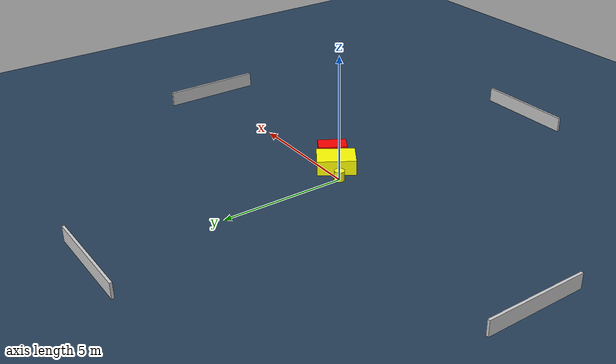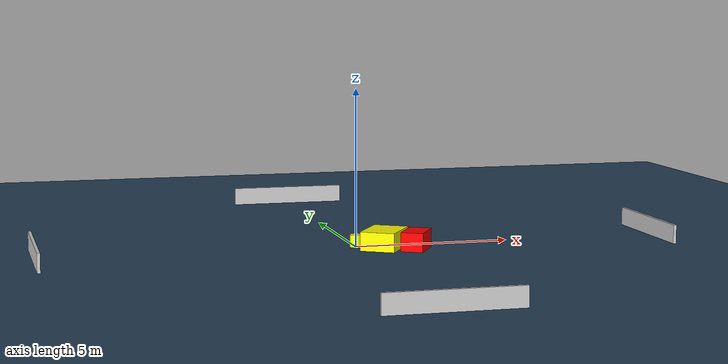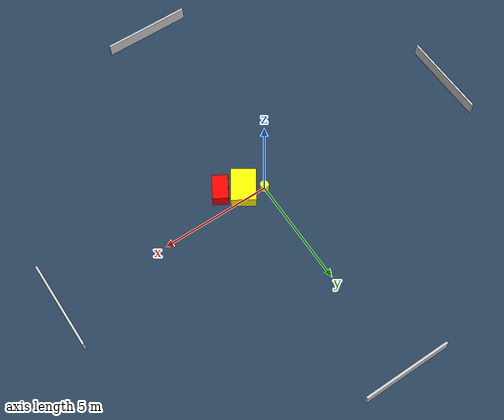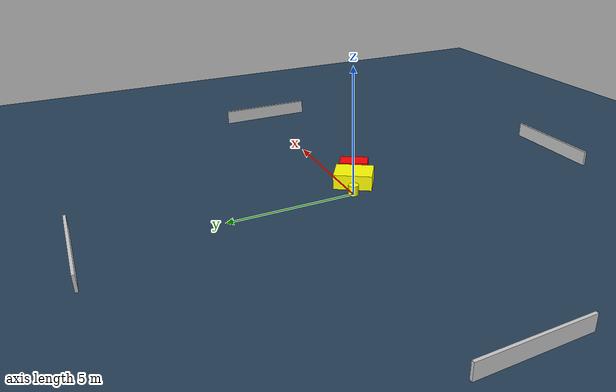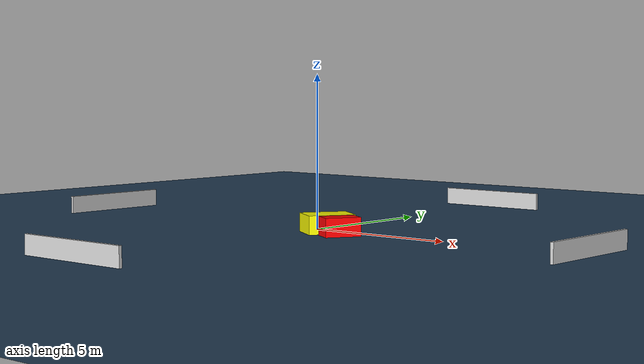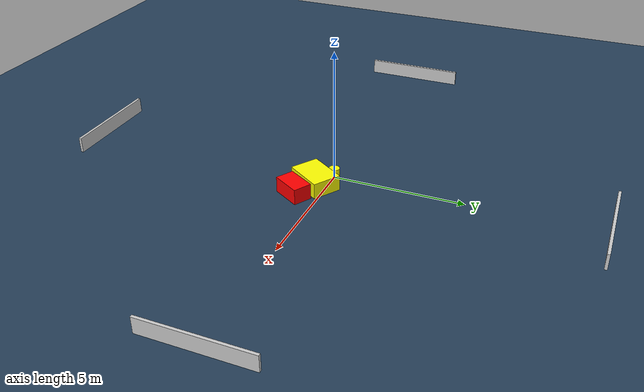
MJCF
<?xml version="1.0" ?>
<mujoco model="generated_environment">
  <option timestep="0.01" integrator="RK4" cone="elliptic"/>
  <default>
    <geom density="1"/>
  </default>
  <asset>
    <texture builtin="gradient" height="3072" name="skybox" rgb1="0.3 0.5 0.7" rgb2="0 0 0" type="skybox" width="512"/>
    <texture builtin="checker" height="300" name="groundplane" rgb1="0.2 0.3 0.4" rgb2="0.1 0.2 0.3" type="2d" width="300"/>
    <material name="groundplane" reflectance="0.2" texrepeat="5 5" texture="groundplane"/>
  </asset>
  <worldbody>
    <light dir="0 0 -1" directional="true" pos="0 0 1.5"/>
    <geom condim="3" friction="0.5 0.005 0.001" material="groundplane" name="floor" pos="0 0 0" size="0 0 0.05" type="plane"/>
    <body name="walls">
      <geom name="wall_1" condim="4" pos="-10.0 0.0 0.3" rgba="0.800000011920929 0.800000011920929 0.800000011920929 1.0" size="0.05 2.0 0.3" type="box"/>
      <geom name="wall_2" condim="4" pos="10.0 0.0 0.3" rgba="0.800000011920929 0.800000011920929 0.800000011920929 1.0" size="0.05 2.0 0.3" type="box"/>
      <geom name="wall_3" condim="4" pos="0.0 -10.0 0.3" rgba="0.800000011920929 0.800000011920929 0.800000011920929 1.0" size="2.0 0.05 0.3" type="box"/>
      <geom name="wall_4" condim="4" pos="0.0 10.0 0.3" rgba="0.800000011920929 0.800000011920929 0.800000011920929 1.0" size="2.0 0.05 0.3" type="box"/>
    </body>
    <body name="robot">
      <joint name="joint_x" type="slide" pos="0 0 0" axis="1 0 0"/>
      <joint name="joint_y" type="slide" pos="0 0 0" axis="0 1 0"/>
      <geom name="robot" type="cylinder" pos="0.0 0.0 0.2" size="0.2 0.2 0.0" mass="5.0" friction="1.0 0.005 0.0001" condim="4" rgba="1.0 1.0 0.0 1.0"/>
    </body>
    <body name="obstacle_1_movable">
      <geom name="obstacle_1_movable" condim="4" pos="0.8054722913468737 -0.42405655164866196 0.3" euler="0 0 236.9741955979101" friction="0.0 0.005 0.001" rgba="1.0 1.0 0.0 1.0" size="0.761567552063305 0.5532769804662385 0.3" type="box" mass="0.1"/>
      <joint type="free"/>
    </body>
    <body name="obstacle_2_static">
      <geom name="obstacle_2_static" condim="4" pos="1.7095907561073613 -0.8865085084534591 0.3" euler="0 0 329.3475596350327" friction="0.0 0.005 0.001" rgba="1.0 0.0 0.0 1.0" size="0.3535379781530577 0.5714242576475306 0.3" type="box"/>
    </body>
  </worldbody>
  <actuator>
    <motor name="actuator_x" joint="joint_x" gear="1" ctrlrange="-1 1"/>
    <motor name="actuator_y" joint="joint_y" gear="1" ctrlrange="-1 1"/>
  </actuator>
</mujoco>
